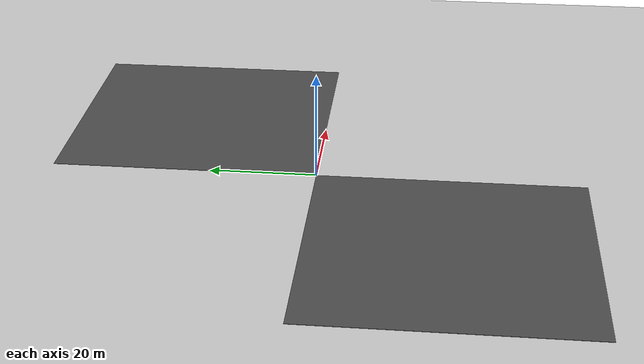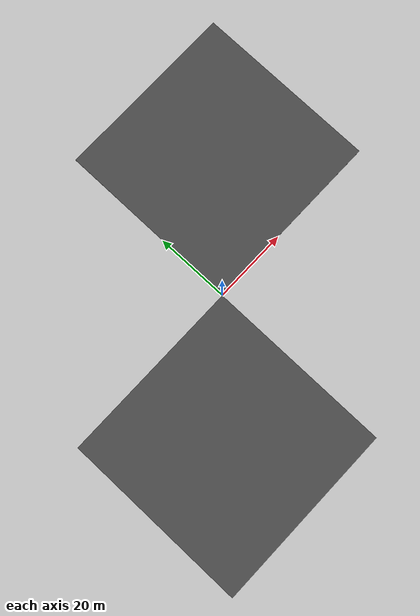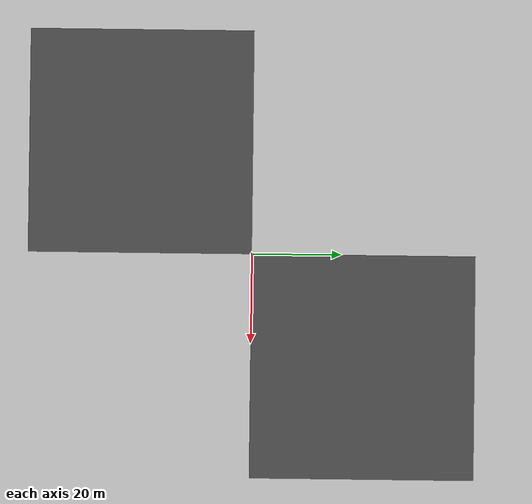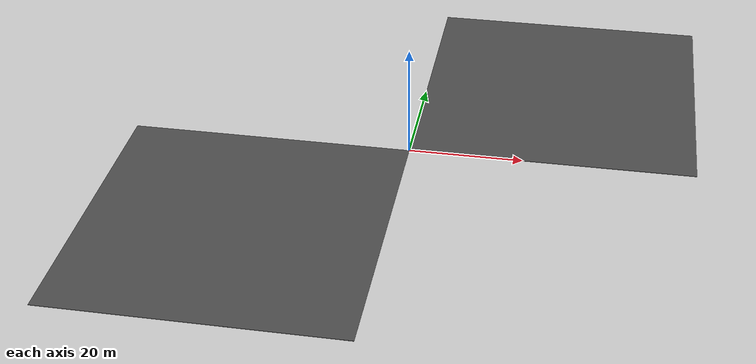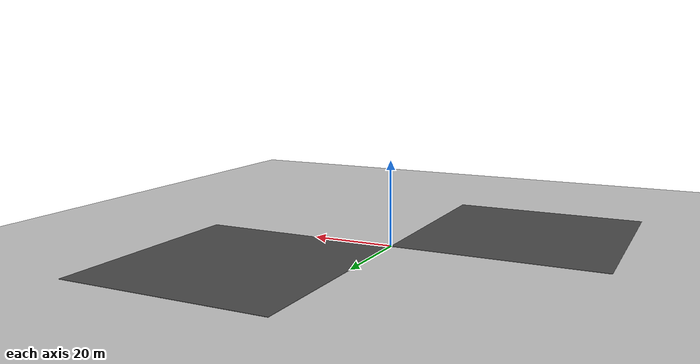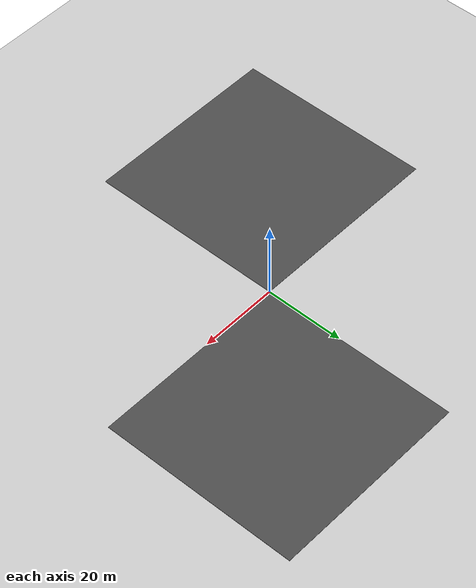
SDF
<sdf version="1.7">
 <world name="default">
  <model name="ground_plane">
   <static>1</static>
   <link name="link">
    <collision name="collision">
     <geometry><plane><normal>0 0 1</normal><size>100 100</size></plane></geometry>
     <surface>
      <contact><collide_bitmask>65535</collide_bitmask></contact>
      <friction><ode><mu>100</mu><mu2>50</mu2></ode></friction>
     </surface>
    </collision>
    <visual name="visual">
     <cast_shadows>0</cast_shadows>
     <geometry><plane><normal>0 0 1</normal><size>100 100</size></plane></geometry>
     <material>
      <script><uri>file://media/materials/scripts/gazebo.material</uri><name>Gazebo/Grey</name></script>
     </material>
    </visual>
   </link>
  </model>
  <model name="asphalt_plane">
   <link name="link">
    <inertial>
     <mass>1</mass>
     <inertia><ixx>1</ixx><ixy>0</ixy><ixz>0</ixz><iyy>1</iyy><iyz>0</iyz><izz>1</izz></inertia>
    </inertial>
    <visual name="visual">
     <cast_shadows>0</cast_shadows>
     <geometry><box><size>50 50 0.1</size></box></geometry>
     <material>
      <script>
       <uri>model://asphalt_plane/materials/scripts</uri>
       <uri>model://asphalt_plane/materials/textures</uri>
       <name>vrc/asphalt</name>
      </script>
      <shader type="pixel"><normal_map>__default__</normal_map></shader>
      <ambient>0.5 0.5 0.5 1</ambient>
      <diffuse>0.5 0.5 0.5 1</diffuse>
      <specular>0.2 0.2 0.2 1</specular>
      <emissive>0 0 0 1</emissive>
     </material>
    </visual>
    <collision name="collision">
     <geometry><box><size>50 50 0.1</size></box></geometry>
     <surface>
      <friction>
       <ode><mu>1</mu><mu2>1</mu2><fdir1>0 0 0</fdir1><slip1>0</slip1><slip2>0</slip2></ode>
       <torsional>
        <coefficient>1</coefficient>
        <patch_radius>0</patch_radius>
        <surface_radius>0</surface_radius>
        <use_patch_radius>1</use_patch_radius>
        <ode><slip>0</slip></ode>
       </torsional>
      </friction>
      <bounce><restitution_coefficient>0</restitution_coefficient><threshold>1e+06</threshold></bounce>
      <contact>
       <collide_without_contact>0</collide_without_contact>
       <collide_without_contact_bitmask>1</collide_without_contact_bitmask>
       <collide_bitmask>1</collide_bitmask>
       <ode>
        <soft_cfm>0</soft_cfm>
        <soft_erp>0.2</soft_erp>
        <kp>1e+13</kp>
        <kd>1</kd>
        <max_vel>0.01</max_vel>
        <min_depth>0</min_depth>
       </ode>
       <bullet>
        <split_impulse>1</split_impulse>
        <split_impulse_penetration_threshold>-0.01</split_impulse_penetration_threshold>
        <soft_cfm>0</soft_cfm>
        <soft_erp>0.2</soft_erp>
        <kp>1e+13</kp>
        <kd>1</kd>
       </bullet>
      </contact>
     </surface>
    </collision>
   </link>
   <static>1</static>
   <pose>25 25 0 0 -0 0</pose>
  </model>
  <model name="asphalt_plane_1">
   <link name="link">
    <inertial>
     <mass>1</mass>
     <inertia><ixx>1</ixx><ixy>0</ixy><ixz>0</ixz><iyy>1</iyy><iyz>0</iyz><izz>1</izz></inertia>
    </inertial>
    <visual name="visual">
     <cast_shadows>0</cast_shadows>
     <geometry><box><size>50 50 0.1</size></box></geometry>
     <material>
      <script>
       <uri>model://asphalt_plane/materials/scripts</uri>
       <uri>model://asphalt_plane/materials/textures</uri>
       <name>vrc/asphalt</name>
      </script>
      <shader type="pixel"><normal_map>__default__</normal_map></shader>
      <ambient>0.5 0.5 0.5 1</ambient>
      <diffuse>0.5 0.5 0.5 1</diffuse>
      <specular>0.2 0.2 0.2 1</specular>
      <emissive>0 0 0 1</emissive>
     </material>
    </visual>
    <collision name="collision">
     <geometry><box><size>50 50 0.1</size></box></geometry>
     <surface>
      <friction>
       <ode><mu>1</mu><mu2>1</mu2><fdir1>0 0 0</fdir1><slip1>0</slip1><slip2>0</slip2></ode>
       <torsional>
        <coefficient>1</coefficient>
        <patch_radius>0</patch_radius>
        <surface_radius>0</surface_radius>
        <use_patch_radius>1</use_patch_radius>
        <ode><slip>0</slip></ode>
       </torsional>
      </friction>
      <bounce><restitution_coefficient>0</restitution_coefficient><threshold>1e+06</threshold></bounce>
      <contact>
       <collide_without_contact>0</collide_without_contact>
       <collide_without_contact_bitmask>1</collide_without_contact_bitmask>
       <collide_bitmask>1</collide_bitmask>
       <ode>
        <soft_cfm>0</soft_cfm>
        <soft_erp>0.2</soft_erp>
        <kp>1e+13</kp>
        <kd>1</kd>
        <max_vel>0.01</max_vel>
        <min_depth>0</min_depth>
       </ode>
       <bullet>
        <split_impulse>1</split_impulse>
        <split_impulse_penetration_threshold>-0.01</split_impulse_penetration_threshold>
        <soft_cfm>0</soft_cfm>
        <soft_erp>0.2</soft_erp>
        <kp>1e+13</kp>
        <kd>1</kd>
       </bullet>
      </contact>
     </surface>
    </collision>
   </link>
   <static>1</static>
   <pose>-25 -25 0 0 -0 0</pose>
  </model>
 </world>
</sdf>
